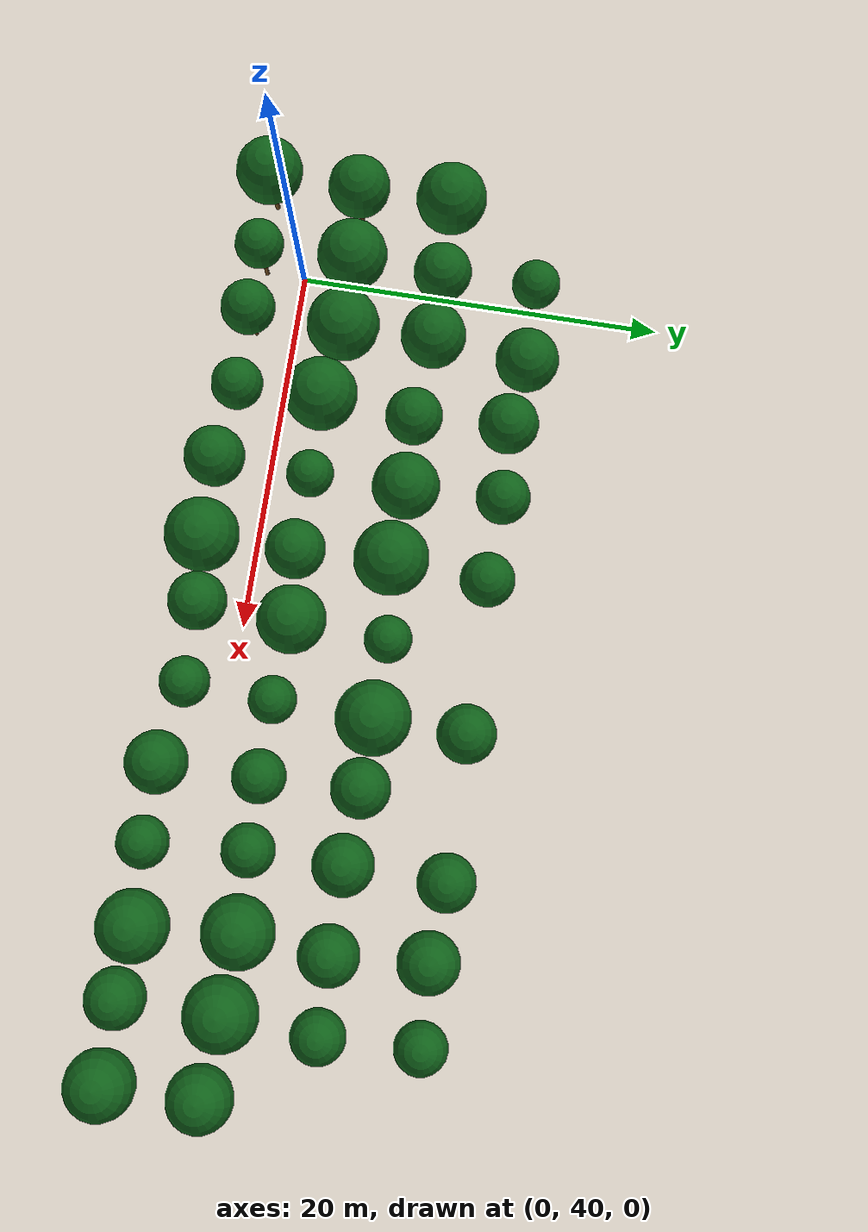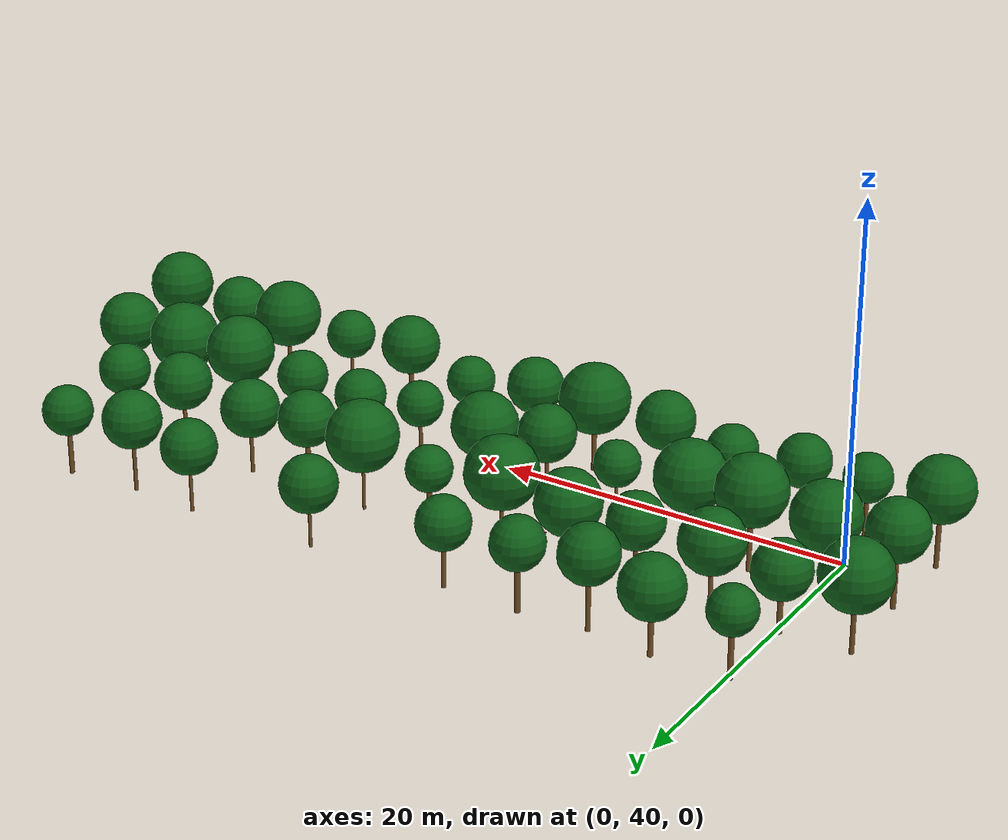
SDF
<sdf version="1.9">
 <world name="cheongsong_orchard">
  <model name="apple_tree_1603">
   <static>true</static>
   <pose>-4.05 37.77 0 0 0 0</pose>
   <link name="link">
    <collision name="trunk_col">
     <pose>0 0 1.34 0 0 0</pose>
     <geometry><cylinder><radius>0.129</radius><length>2.69</length></cylinder></geometry>
    </collision>
    <visual name="trunk_vis">
     <pose>0 0 1.34 0 0 0</pose>
     <geometry><cylinder><radius>0.129</radius><length>2.69</length></cylinder></geometry>
     <material><ambient>0.35 0.22 0.08 1</ambient><diffuse>0.45 0.30 0.12 1</diffuse></material>
    </visual>
    <collision name="canopy_col">
     <pose>0 0 4.48 0 0 0</pose>
     <geometry><sphere><radius>1.79</radius></sphere></geometry>
    </collision>
    <visual name="canopy_vis">
     <pose>0 0 4.48 0 0 0</pose>
     <geometry><sphere><radius>1.79</radius></sphere></geometry>
     <material><ambient>0.04 0.28 0.06 1</ambient><diffuse>0.06 0.38 0.10 1</diffuse></material>
    </visual>
   </link>
  </model>
  <model name="apple_tree_1604">
   <static>true</static>
   <pose>-0.06 37.86 0 0 0 0</pose>
   <link name="link">
    <collision name="trunk_col">
     <pose>0 0 1.37 0 0 0</pose>
     <geometry><cylinder><radius>0.116</radius><length>2.75</length></cylinder></geometry>
    </collision>
    <visual name="trunk_vis">
     <pose>0 0 1.37 0 0 0</pose>
     <geometry><cylinder><radius>0.116</radius><length>2.75</length></cylinder></geometry>
     <material><ambient>0.35 0.22 0.08 1</ambient><diffuse>0.45 0.30 0.12 1</diffuse></material>
    </visual>
    <collision name="canopy_col">
     <pose>0 0 4.07 0 0 0</pose>
     <geometry><sphere><radius>1.32</radius></sphere></geometry>
    </collision>
    <visual name="canopy_vis">
     <pose>0 0 4.07 0 0 0</pose>
     <geometry><sphere><radius>1.32</radius></sphere></geometry>
     <material><ambient>0.04 0.28 0.06 1</ambient><diffuse>0.06 0.38 0.10 1</diffuse></material>
    </visual>
   </link>
  </model>
  <model name="apple_tree_1605">
   <static>true</static>
   <pose>3.52 37.87 0 0 0 0</pose>
   <link name="link">
    <collision name="trunk_col">
     <pose>0 0 1.30 0 0 0</pose>
     <geometry><cylinder><radius>0.112</radius><length>2.61</length></cylinder></geometry>
    </collision>
    <visual name="trunk_vis">
     <pose>0 0 1.30 0 0 0</pose>
     <geometry><cylinder><radius>0.112</radius><length>2.61</length></cylinder></geometry>
     <material><ambient>0.35 0.22 0.08 1</ambient><diffuse>0.45 0.30 0.12 1</diffuse></material>
    </visual>
    <collision name="canopy_col">
     <pose>0 0 4.06 0 0 0</pose>
     <geometry><sphere><radius>1.46</radius></sphere></geometry>
    </collision>
    <visual name="canopy_vis">
     <pose>0 0 4.06 0 0 0</pose>
     <geometry><sphere><radius>1.46</radius></sphere></geometry>
     <material><ambient>0.04 0.28 0.06 1</ambient><diffuse>0.06 0.38 0.10 1</diffuse></material>
    </visual>
   </link>
  </model>
  <model name="apple_tree_1606">
   <static>true</static>
   <pose>7.62 37.94 0 0 0 0</pose>
   <link name="link">
    <collision name="trunk_col">
     <pose>0 0 1.11 0 0 0</pose>
     <geometry><cylinder><radius>0.134</radius><length>2.22</length></cylinder></geometry>
    </collision>
    <visual name="trunk_vis">
     <pose>0 0 1.11 0 0 0</pose>
     <geometry><cylinder><radius>0.134</radius><length>2.22</length></cylinder></geometry>
     <material><ambient>0.35 0.22 0.08 1</ambient><diffuse>0.45 0.30 0.12 1</diffuse></material>
    </visual>
    <collision name="canopy_col">
     <pose>0 0 3.61 0 0 0</pose>
     <geometry><sphere><radius>1.39</radius></sphere></geometry>
    </collision>
    <visual name="canopy_vis">
     <pose>0 0 3.61 0 0 0</pose>
     <geometry><sphere><radius>1.39</radius></sphere></geometry>
     <material><ambient>0.04 0.28 0.06 1</ambient><diffuse>0.06 0.38 0.10 1</diffuse></material>
    </visual>
   </link>
  </model>
  <model name="apple_tree_1607">
   <static>true</static>
   <pose>11.81 37.54 0 0 0 0</pose>
   <link name="link">
    <collision name="trunk_col">
     <pose>0 0 1.23 0 0 0</pose>
     <geometry><cylinder><radius>0.117</radius><length>2.45</length></cylinder></geometry>
    </collision>
    <visual name="trunk_vis">
     <pose>0 0 1.23 0 0 0</pose>
     <geometry><cylinder><radius>0.117</radius><length>2.45</length></cylinder></geometry>
     <material><ambient>0.35 0.22 0.08 1</ambient><diffuse>0.45 0.30 0.12 1</diffuse></material>
    </visual>
    <collision name="canopy_col">
     <pose>0 0 4.06 0 0 0</pose>
     <geometry><sphere><radius>1.61</radius></sphere></geometry>
    </collision>
    <visual name="canopy_vis">
     <pose>0 0 4.06 0 0 0</pose>
     <geometry><sphere><radius>1.61</radius></sphere></geometry>
     <material><ambient>0.04 0.28 0.06 1</ambient><diffuse>0.06 0.38 0.10 1</diffuse></material>
    </visual>
   </link>
  </model>
  <model name="apple_tree_1608">
   <static>true</static>
   <pose>16.07 37.68 0 0 0 0</pose>
   <link name="link">
    <collision name="trunk_col">
     <pose>0 0 1.16 0 0 0</pose>
     <geometry><cylinder><radius>0.133</radius><length>2.32</length></cylinder></geometry>
    </collision>
    <visual name="trunk_vis">
     <pose>0 0 1.16 0 0 0</pose>
     <geometry><cylinder><radius>0.133</radius><length>2.32</length></cylinder></geometry>
     <material><ambient>0.35 0.22 0.08 1</ambient><diffuse>0.45 0.30 0.12 1</diffuse></material>
    </visual>
    <collision name="canopy_col">
     <pose>0 0 4.29 0 0 0</pose>
     <geometry><sphere><radius>1.96</radius></sphere></geometry>
    </collision>
    <visual name="canopy_vis">
     <pose>0 0 4.29 0 0 0</pose>
     <geometry><sphere><radius>1.96</radius></sphere></geometry>
     <material><ambient>0.04 0.28 0.06 1</ambient><diffuse>0.06 0.38 0.10 1</diffuse></material>
    </visual>
   </link>
  </model>
  <model name="apple_tree_1609">
   <static>true</static>
   <pose>19.54 38.08 0 0 0 0</pose>
   <link name="link">
    <collision name="trunk_col">
     <pose>0 0 1.41 0 0 0</pose>
     <geometry><cylinder><radius>0.131</radius><length>2.81</length></cylinder></geometry>
    </collision>
    <visual name="trunk_vis">
     <pose>0 0 1.41 0 0 0</pose>
     <geometry><cylinder><radius>0.131</radius><length>2.81</length></cylinder></geometry>
     <material><ambient>0.35 0.22 0.08 1</ambient><diffuse>0.45 0.30 0.12 1</diffuse></material>
    </visual>
    <collision name="canopy_col">
     <pose>0 0 4.35 0 0 0</pose>
     <geometry><sphere><radius>1.54</radius></sphere></geometry>
    </collision>
    <visual name="canopy_vis">
     <pose>0 0 4.35 0 0 0</pose>
     <geometry><sphere><radius>1.54</radius></sphere></geometry>
     <material><ambient>0.04 0.28 0.06 1</ambient><diffuse>0.06 0.38 0.10 1</diffuse></material>
    </visual>
   </link>
  </model>
  <model name="apple_tree_1610">
   <static>true</static>
   <pose>23.68 38.04 0 0 0 0</pose>
   <link name="link">
    <collision name="trunk_col">
     <pose>0 0 1.13 0 0 0</pose>
     <geometry><cylinder><radius>0.104</radius><length>2.26</length></cylinder></geometry>
    </collision>
    <visual name="trunk_vis">
     <pose>0 0 1.13 0 0 0</pose>
     <geometry><cylinder><radius>0.104</radius><length>2.26</length></cylinder></geometry>
     <material><ambient>0.35 0.22 0.08 1</ambient><diffuse>0.45 0.30 0.12 1</diffuse></material>
    </visual>
    <collision name="canopy_col">
     <pose>0 0 3.59 0 0 0</pose>
     <geometry><sphere><radius>1.33</radius></sphere></geometry>
    </collision>
    <visual name="canopy_vis">
     <pose>0 0 3.59 0 0 0</pose>
     <geometry><sphere><radius>1.33</radius></sphere></geometry>
     <material><ambient>0.04 0.28 0.06 1</ambient><diffuse>0.06 0.38 0.10 1</diffuse></material>
    </visual>
   </link>
  </model>
  <model name="apple_tree_1611">
   <static>true</static>
   <pose>27.96 37.53 0 0 0 0</pose>
   <link name="link">
    <collision name="trunk_col">
     <pose>0 0 1.41 0 0 0</pose>
     <geometry><cylinder><radius>0.147</radius><length>2.83</length></cylinder></geometry>
    </collision>
    <visual name="trunk_vis">
     <pose>0 0 1.41 0 0 0</pose>
     <geometry><cylinder><radius>0.147</radius><length>2.83</length></cylinder></geometry>
     <material><ambient>0.35 0.22 0.08 1</ambient><diffuse>0.45 0.30 0.12 1</diffuse></material>
    </visual>
    <collision name="canopy_col">
     <pose>0 0 4.46 0 0 0</pose>
     <geometry><sphere><radius>1.63</radius></sphere></geometry>
    </collision>
    <visual name="canopy_vis">
     <pose>0 0 4.46 0 0 0</pose>
     <geometry><sphere><radius>1.63</radius></sphere></geometry>
     <material><ambient>0.04 0.28 0.06 1</ambient><diffuse>0.06 0.38 0.10 1</diffuse></material>
    </visual>
   </link>
  </model>
  <model name="apple_tree_1612">
   <static>true</static>
   <pose>31.99 37.51 0 0 0 0</pose>
   <link name="link">
    <collision name="trunk_col">
     <pose>0 0 1.38 0 0 0</pose>
     <geometry><cylinder><radius>0.082</radius><length>2.76</length></cylinder></geometry>
    </collision>
    <visual name="trunk_vis">
     <pose>0 0 1.38 0 0 0</pose>
     <geometry><cylinder><radius>0.082</radius><length>2.76</length></cylinder></geometry>
     <material><ambient>0.35 0.22 0.08 1</ambient><diffuse>0.45 0.30 0.12 1</diffuse></material>
    </visual>
    <collision name="canopy_col">
     <pose>0 0 4.12 0 0 0</pose>
     <geometry><sphere><radius>1.36</radius></sphere></geometry>
    </collision>
    <visual name="canopy_vis">
     <pose>0 0 4.12 0 0 0</pose>
     <geometry><sphere><radius>1.36</radius></sphere></geometry>
     <material><ambient>0.04 0.28 0.06 1</ambient><diffuse>0.06 0.38 0.10 1</diffuse></material>
    </visual>
   </link>
  </model>
  <model name="apple_tree_1613">
   <static>true</static>
   <pose>36.08 37.85 0 0 0 0</pose>
   <link name="link">
    <collision name="trunk_col">
     <pose>0 0 1.33 0 0 0</pose>
     <geometry><cylinder><radius>0.116</radius><length>2.66</length></cylinder></geometry>
    </collision>
    <visual name="trunk_vis">
     <pose>0 0 1.33 0 0 0</pose>
     <geometry><cylinder><radius>0.116</radius><length>2.66</length></cylinder></geometry>
     <material><ambient>0.35 0.22 0.08 1</ambient><diffuse>0.45 0.30 0.12 1</diffuse></material>
    </visual>
    <collision name="canopy_col">
     <pose>0 0 4.53 0 0 0</pose>
     <geometry><sphere><radius>1.86</radius></sphere></geometry>
    </collision>
    <visual name="canopy_vis">
     <pose>0 0 4.53 0 0 0</pose>
     <geometry><sphere><radius>1.86</radius></sphere></geometry>
     <material><ambient>0.04 0.28 0.06 1</ambient><diffuse>0.06 0.38 0.10 1</diffuse></material>
    </visual>
   </link>
  </model>
  <model name="apple_tree_1614">
   <static>true</static>
   <pose>39.69 37.58 0 0 0 0</pose>
   <link name="link">
    <collision name="trunk_col">
     <pose>0 0 1.32 0 0 0</pose>
     <geometry><cylinder><radius>0.139</radius><length>2.64</length></cylinder></geometry>
    </collision>
    <visual name="trunk_vis">
     <pose>0 0 1.32 0 0 0</pose>
     <geometry><cylinder><radius>0.139</radius><length>2.64</length></cylinder></geometry>
     <material><ambient>0.35 0.22 0.08 1</ambient><diffuse>0.45 0.30 0.12 1</diffuse></material>
    </visual>
    <collision name="canopy_col">
     <pose>0 0 4.19 0 0 0</pose>
     <geometry><sphere><radius>1.56</radius></sphere></geometry>
    </collision>
    <visual name="canopy_vis">
     <pose>0 0 4.19 0 0 0</pose>
     <geometry><sphere><radius>1.56</radius></sphere></geometry>
     <material><ambient>0.04 0.28 0.06 1</ambient><diffuse>0.06 0.38 0.10 1</diffuse></material>
    </visual>
   </link>
  </model>
  <model name="apple_tree_1615">
   <static>true</static>
   <pose>43.77 37.67 0 0 0 0</pose>
   <link name="link">
    <collision name="trunk_col">
     <pose>0 0 1.40 0 0 0</pose>
     <geometry><cylinder><radius>0.150</radius><length>2.79</length></cylinder></geometry>
    </collision>
    <visual name="trunk_vis">
     <pose>0 0 1.40 0 0 0</pose>
     <geometry><cylinder><radius>0.150</radius><length>2.79</length></cylinder></geometry>
     <material><ambient>0.35 0.22 0.08 1</ambient><diffuse>0.45 0.30 0.12 1</diffuse></material>
    </visual>
    <collision name="canopy_col">
     <pose>0 0 4.58 0 0 0</pose>
     <geometry><sphere><radius>1.79</radius></sphere></geometry>
    </collision>
    <visual name="canopy_vis">
     <pose>0 0 4.58 0 0 0</pose>
     <geometry><sphere><radius>1.79</radius></sphere></geometry>
     <material><ambient>0.04 0.28 0.06 1</ambient><diffuse>0.06 0.38 0.10 1</diffuse></material>
    </visual>
   </link>
  </model>
  <model name="apple_tree_1660">
   <static>true</static>
   <pose>-3.93 42.68 0 0 0 0</pose>
   <link name="link">
    <collision name="trunk_col">
     <pose>0 0 1.38 0 0 0</pose>
     <geometry><cylinder><radius>0.141</radius><length>2.75</length></cylinder></geometry>
    </collision>
    <visual name="trunk_vis">
     <pose>0 0 1.38 0 0 0</pose>
     <geometry><cylinder><radius>0.141</radius><length>2.75</length></cylinder></geometry>
     <material><ambient>0.35 0.22 0.08 1</ambient><diffuse>0.45 0.30 0.12 1</diffuse></material>
    </visual>
    <collision name="canopy_col">
     <pose>0 0 4.42 0 0 0</pose>
     <geometry><sphere><radius>1.67</radius></sphere></geometry>
    </collision>
    <visual name="canopy_vis">
     <pose>0 0 4.42 0 0 0</pose>
     <geometry><sphere><radius>1.67</radius></sphere></geometry>
     <material><ambient>0.04 0.28 0.06 1</ambient><diffuse>0.06 0.38 0.10 1</diffuse></material>
    </visual>
   </link>
  </model>
  <model name="apple_tree_1661">
   <static>true</static>
   <pose>-0.18 42.90 0 0 0 0</pose>
   <link name="link">
    <collision name="trunk_col">
     <pose>0 0 1.16 0 0 0</pose>
     <geometry><cylinder><radius>0.120</radius><length>2.32</length></cylinder></geometry>
    </collision>
    <visual name="trunk_vis">
     <pose>0 0 1.16 0 0 0</pose>
     <geometry><cylinder><radius>0.120</radius><length>2.32</length></cylinder></geometry>
     <material><ambient>0.35 0.22 0.08 1</ambient><diffuse>0.45 0.30 0.12 1</diffuse></material>
    </visual>
    <collision name="canopy_col">
     <pose>0 0 4.21 0 0 0</pose>
     <geometry><sphere><radius>1.88</radius></sphere></geometry>
    </collision>
    <visual name="canopy_vis">
     <pose>0 0 4.21 0 0 0</pose>
     <geometry><sphere><radius>1.88</radius></sphere></geometry>
     <material><ambient>0.04 0.28 0.06 1</ambient><diffuse>0.06 0.38 0.10 1</diffuse></material>
    </visual>
   </link>
  </model>
  <model name="apple_tree_1662">
   <static>true</static>
   <pose>3.87 43.09 0 0 0 0</pose>
   <link name="link">
    <collision name="trunk_col">
     <pose>0 0 1.33 0 0 0</pose>
     <geometry><cylinder><radius>0.123</radius><length>2.67</length></cylinder></geometry>
    </collision>
    <visual name="trunk_vis">
     <pose>0 0 1.33 0 0 0</pose>
     <geometry><cylinder><radius>0.123</radius><length>2.67</length></cylinder></geometry>
     <material><ambient>0.35 0.22 0.08 1</ambient><diffuse>0.45 0.30 0.12 1</diffuse></material>
    </visual>
    <collision name="canopy_col">
     <pose>0 0 4.60 0 0 0</pose>
     <geometry><sphere><radius>1.93</radius></sphere></geometry>
    </collision>
    <visual name="canopy_vis">
     <pose>0 0 4.60 0 0 0</pose>
     <geometry><sphere><radius>1.93</radius></sphere></geometry>
     <material><ambient>0.04 0.28 0.06 1</ambient><diffuse>0.06 0.38 0.10 1</diffuse></material>
    </visual>
   </link>
  </model>
  <model name="apple_tree_1663">
   <static>true</static>
   <pose>7.64 42.51 0 0 0 0</pose>
   <link name="link">
    <collision name="trunk_col">
     <pose>0 0 1.09 0 0 0</pose>
     <geometry><cylinder><radius>0.095</radius><length>2.18</length></cylinder></geometry>
    </collision>
    <visual name="trunk_vis">
     <pose>0 0 1.09 0 0 0</pose>
     <geometry><cylinder><radius>0.095</radius><length>2.18</length></cylinder></geometry>
     <material><ambient>0.35 0.22 0.08 1</ambient><diffuse>0.45 0.30 0.12 1</diffuse></material>
    </visual>
    <collision name="canopy_col">
     <pose>0 0 4.12 0 0 0</pose>
     <geometry><sphere><radius>1.94</radius></sphere></geometry>
    </collision>
    <visual name="canopy_vis">
     <pose>0 0 4.12 0 0 0</pose>
     <geometry><sphere><radius>1.94</radius></sphere></geometry>
     <material><ambient>0.04 0.28 0.06 1</ambient><diffuse>0.06 0.38 0.10 1</diffuse></material>
    </visual>
   </link>
  </model>
  <model name="apple_tree_1664">
   <static>true</static>
   <pose>11.88 42.60 0 0 0 0</pose>
   <link name="link">
    <collision name="trunk_col">
     <pose>0 0 1.21 0 0 0</pose>
     <geometry><cylinder><radius>0.080</radius><length>2.41</length></cylinder></geometry>
    </collision>
    <visual name="trunk_vis">
     <pose>0 0 1.21 0 0 0</pose>
     <geometry><cylinder><radius>0.080</radius><length>2.41</length></cylinder></geometry>
     <material><ambient>0.35 0.22 0.08 1</ambient><diffuse>0.45 0.30 0.12 1</diffuse></material>
    </visual>
    <collision name="canopy_col">
     <pose>0 0 3.68 0 0 0</pose>
     <geometry><sphere><radius>1.26</radius></sphere></geometry>
    </collision>
    <visual name="canopy_vis">
     <pose>0 0 3.68 0 0 0</pose>
     <geometry><sphere><radius>1.26</radius></sphere></geometry>
     <material><ambient>0.04 0.28 0.06 1</ambient><diffuse>0.06 0.38 0.10 1</diffuse></material>
    </visual>
   </link>
  </model>
  <model name="apple_tree_1665">
   <static>true</static>
   <pose>16.09 42.59 0 0 0 0</pose>
   <link name="link">
    <collision name="trunk_col">
     <pose>0 0 1.37 0 0 0</pose>
     <geometry><cylinder><radius>0.110</radius><length>2.74</length></cylinder></geometry>
    </collision>
    <visual name="trunk_vis">
     <pose>0 0 1.37 0 0 0</pose>
     <geometry><cylinder><radius>0.110</radius><length>2.74</length></cylinder></geometry>
     <material><ambient>0.35 0.22 0.08 1</ambient><diffuse>0.45 0.30 0.12 1</diffuse></material>
    </visual>
    <collision name="canopy_col">
     <pose>0 0 4.31 0 0 0</pose>
     <geometry><sphere><radius>1.58</radius></sphere></geometry>
    </collision>
    <visual name="canopy_vis">
     <pose>0 0 4.31 0 0 0</pose>
     <geometry><sphere><radius>1.58</radius></sphere></geometry>
     <material><ambient>0.04 0.28 0.06 1</ambient><diffuse>0.06 0.38 0.10 1</diffuse></material>
    </visual>
   </link>
  </model>
  <model name="apple_tree_1666">
   <static>true</static>
   <pose>19.69 42.97 0 0 0 0</pose>
   <link name="link">
    <collision name="trunk_col">
     <pose>0 0 1.09 0 0 0</pose>
     <geometry><cylinder><radius>0.108</radius><length>2.18</length></cylinder></geometry>
    </collision>
    <visual name="trunk_vis">
     <pose>0 0 1.09 0 0 0</pose>
     <geometry><cylinder><radius>0.108</radius><length>2.18</length></cylinder></geometry>
     <material><ambient>0.35 0.22 0.08 1</ambient><diffuse>0.45 0.30 0.12 1</diffuse></material>
    </visual>
    <collision name="canopy_col">
     <pose>0 0 4.00 0 0 0</pose>
     <geometry><sphere><radius>1.82</radius></sphere></geometry>
    </collision>
    <visual name="canopy_vis">
     <pose>0 0 4.00 0 0 0</pose>
     <geometry><sphere><radius>1.82</radius></sphere></geometry>
     <material><ambient>0.04 0.28 0.06 1</ambient><diffuse>0.06 0.38 0.10 1</diffuse></material>
    </visual>
   </link>
  </model>
  <model name="apple_tree_1667">
   <static>true</static>
   <pose>23.93 42.72 0 0 0 0</pose>
   <link name="link">
    <collision name="trunk_col">
     <pose>0 0 1.38 0 0 0</pose>
     <geometry><cylinder><radius>0.102</radius><length>2.77</length></cylinder></geometry>
    </collision>
    <visual name="trunk_vis">
     <pose>0 0 1.38 0 0 0</pose>
     <geometry><cylinder><radius>0.102</radius><length>2.77</length></cylinder></geometry>
     <material><ambient>0.35 0.22 0.08 1</ambient><diffuse>0.45 0.30 0.12 1</diffuse></material>
    </visual>
    <collision name="canopy_col">
     <pose>0 0 4.03 0 0 0</pose>
     <geometry><sphere><radius>1.26</radius></sphere></geometry>
    </collision>
    <visual name="canopy_vis">
     <pose>0 0 4.03 0 0 0</pose>
     <geometry><sphere><radius>1.26</radius></sphere></geometry>
     <material><ambient>0.04 0.28 0.06 1</ambient><diffuse>0.06 0.38 0.10 1</diffuse></material>
    </visual>
   </link>
  </model>
  <model name="apple_tree_1668">
   <static>true</static>
   <pose>27.87 42.64 0 0 0 0</pose>
   <link name="link">
    <collision name="trunk_col">
     <pose>0 0 1.06 0 0 0</pose>
     <geometry><cylinder><radius>0.124</radius><length>2.11</length></cylinder></geometry>
    </collision>
    <visual name="trunk_vis">
     <pose>0 0 1.06 0 0 0</pose>
     <geometry><cylinder><radius>0.124</radius><length>2.11</length></cylinder></geometry>
     <material><ambient>0.35 0.22 0.08 1</ambient><diffuse>0.45 0.30 0.12 1</diffuse></material>
    </visual>
    <collision name="canopy_col">
     <pose>0 0 3.53 0 0 0</pose>
     <geometry><sphere><radius>1.42</radius></sphere></geometry>
    </collision>
    <visual name="canopy_vis">
     <pose>0 0 3.53 0 0 0</pose>
     <geometry><sphere><radius>1.42</radius></sphere></geometry>
     <material><ambient>0.04 0.28 0.06 1</ambient><diffuse>0.06 0.38 0.10 1</diffuse></material>
    </visual>
   </link>
  </model>
  <model name="apple_tree_1669">
   <static>true</static>
   <pose>31.60 42.77 0 0 0 0</pose>
   <link name="link">
    <collision name="trunk_col">
     <pose>0 0 1.19 0 0 0</pose>
     <geometry><cylinder><radius>0.129</radius><length>2.38</length></cylinder></geometry>
    </collision>
    <visual name="trunk_vis">
     <pose>0 0 1.19 0 0 0</pose>
     <geometry><cylinder><radius>0.129</radius><length>2.38</length></cylinder></geometry>
     <material><ambient>0.35 0.22 0.08 1</ambient><diffuse>0.45 0.30 0.12 1</diffuse></material>
    </visual>
    <collision name="canopy_col">
     <pose>0 0 3.78 0 0 0</pose>
     <geometry><sphere><radius>1.40</radius></sphere></geometry>
    </collision>
    <visual name="canopy_vis">
     <pose>0 0 3.78 0 0 0</pose>
     <geometry><sphere><radius>1.40</radius></sphere></geometry>
     <material><ambient>0.04 0.28 0.06 1</ambient><diffuse>0.06 0.38 0.10 1</diffuse></material>
    </visual>
   </link>
  </model>
  <model name="apple_tree_1670">
   <static>true</static>
   <pose>35.58 43.05 0 0 0 0</pose>
   <link name="link">
    <collision name="trunk_col">
     <pose>0 0 1.29 0 0 0</pose>
     <geometry><cylinder><radius>0.092</radius><length>2.59</length></cylinder></geometry>
    </collision>
    <visual name="trunk_vis">
     <pose>0 0 1.29 0 0 0</pose>
     <geometry><cylinder><radius>0.092</radius><length>2.59</length></cylinder></geometry>
     <material><ambient>0.35 0.22 0.08 1</ambient><diffuse>0.45 0.30 0.12 1</diffuse></material>
    </visual>
    <collision name="canopy_col">
     <pose>0 0 4.48 0 0 0</pose>
     <geometry><sphere><radius>1.89</radius></sphere></geometry>
    </collision>
    <visual name="canopy_vis">
     <pose>0 0 4.48 0 0 0</pose>
     <geometry><sphere><radius>1.89</radius></sphere></geometry>
     <material><ambient>0.04 0.28 0.06 1</ambient><diffuse>0.06 0.38 0.10 1</diffuse></material>
    </visual>
   </link>
  </model>
  <model name="apple_tree_1671">
   <static>true</static>
   <pose>39.63 42.86 0 0 0 0</pose>
   <link name="link">
    <collision name="trunk_col">
     <pose>0 0 1.14 0 0 0</pose>
     <geometry><cylinder><radius>0.144</radius><length>2.27</length></cylinder></geometry>
    </collision>
    <visual name="trunk_vis">
     <pose>0 0 1.14 0 0 0</pose>
     <geometry><cylinder><radius>0.144</radius><length>2.27</length></cylinder></geometry>
     <material><ambient>0.35 0.22 0.08 1</ambient><diffuse>0.45 0.30 0.12 1</diffuse></material>
    </visual>
    <collision name="canopy_col">
     <pose>0 0 4.20 0 0 0</pose>
     <geometry><sphere><radius>1.93</radius></sphere></geometry>
    </collision>
    <visual name="canopy_vis">
     <pose>0 0 4.20 0 0 0</pose>
     <geometry><sphere><radius>1.93</radius></sphere></geometry>
     <material><ambient>0.04 0.28 0.06 1</ambient><diffuse>0.06 0.38 0.10 1</diffuse></material>
    </visual>
   </link>
  </model>
  <model name="apple_tree_1672">
   <static>true</static>
   <pose>43.81 42.52 0 0 0 0</pose>
   <link name="link">
    <collision name="trunk_col">
     <pose>0 0 1.11 0 0 0</pose>
     <geometry><cylinder><radius>0.125</radius><length>2.22</length></cylinder></geometry>
    </collision>
    <visual name="trunk_vis">
     <pose>0 0 1.11 0 0 0</pose>
     <geometry><cylinder><radius>0.125</radius><length>2.22</length></cylinder></geometry>
     <material><ambient>0.35 0.22 0.08 1</ambient><diffuse>0.45 0.30 0.12 1</diffuse></material>
    </visual>
    <collision name="canopy_col">
     <pose>0 0 3.93 0 0 0</pose>
     <geometry><sphere><radius>1.71</radius></sphere></geometry>
    </collision>
    <visual name="canopy_vis">
     <pose>0 0 3.93 0 0 0</pose>
     <geometry><sphere><radius>1.71</radius></sphere></geometry>
     <material><ambient>0.04 0.28 0.06 1</ambient><diffuse>0.06 0.38 0.10 1</diffuse></material>
    </visual>
   </link>
  </model>
  <model name="apple_tree_1716">
   <static>true</static>
   <pose>-4.06 47.67 0 0 0 0</pose>
   <link name="link">
    <collision name="trunk_col">
     <pose>0 0 1.23 0 0 0</pose>
     <geometry><cylinder><radius>0.123</radius><length>2.45</length></cylinder></geometry>
    </collision>
    <visual name="trunk_vis">
     <pose>0 0 1.23 0 0 0</pose>
     <geometry><cylinder><radius>0.123</radius><length>2.45</length></cylinder></geometry>
     <material><ambient>0.35 0.22 0.08 1</ambient><diffuse>0.45 0.30 0.12 1</diffuse></material>
    </visual>
    <collision name="canopy_col">
     <pose>0 0 4.35 0 0 0</pose>
     <geometry><sphere><radius>1.90</radius></sphere></geometry>
    </collision>
    <visual name="canopy_vis">
     <pose>0 0 4.35 0 0 0</pose>
     <geometry><sphere><radius>1.90</radius></sphere></geometry>
     <material><ambient>0.04 0.28 0.06 1</ambient><diffuse>0.06 0.38 0.10 1</diffuse></material>
    </visual>
   </link>
  </model>
  <model name="apple_tree_1717">
   <static>true</static>
   <pose>-0.23 47.79 0 0 0 0</pose>
   <link name="link">
    <collision name="trunk_col">
     <pose>0 0 0.99 0 0 0</pose>
     <geometry><cylinder><radius>0.141</radius><length>1.99</length></cylinder></geometry>
    </collision>
    <visual name="trunk_vis">
     <pose>0 0 0.99 0 0 0</pose>
     <geometry><cylinder><radius>0.141</radius><length>1.99</length></cylinder></geometry>
     <material><ambient>0.35 0.22 0.08 1</ambient><diffuse>0.45 0.30 0.12 1</diffuse></material>
    </visual>
    <collision name="canopy_col">
     <pose>0 0 3.56 0 0 0</pose>
     <geometry><sphere><radius>1.57</radius></sphere></geometry>
    </collision>
    <visual name="canopy_vis">
     <pose>0 0 3.56 0 0 0</pose>
     <geometry><sphere><radius>1.57</radius></sphere></geometry>
     <material><ambient>0.04 0.28 0.06 1</ambient><diffuse>0.06 0.38 0.10 1</diffuse></material>
    </visual>
   </link>
  </model>
  <model name="apple_tree_1718">
   <static>true</static>
   <pose>3.54 47.87 0 0 0 0</pose>
   <link name="link">
    <collision name="trunk_col">
     <pose>0 0 1.16 0 0 0</pose>
     <geometry><cylinder><radius>0.110</radius><length>2.31</length></cylinder></geometry>
    </collision>
    <visual name="trunk_vis">
     <pose>0 0 1.16 0 0 0</pose>
     <geometry><cylinder><radius>0.110</radius><length>2.31</length></cylinder></geometry>
     <material><ambient>0.35 0.22 0.08 1</ambient><diffuse>0.45 0.30 0.12 1</diffuse></material>
    </visual>
    <collision name="canopy_col">
     <pose>0 0 4.05 0 0 0</pose>
     <geometry><sphere><radius>1.74</radius></sphere></geometry>
    </collision>
    <visual name="canopy_vis">
     <pose>0 0 4.05 0 0 0</pose>
     <geometry><sphere><radius>1.74</radius></sphere></geometry>
     <material><ambient>0.04 0.28 0.06 1</ambient><diffuse>0.06 0.38 0.10 1</diffuse></material>
    </visual>
   </link>
  </model>
  <model name="apple_tree_1719">
   <static>true</static>
   <pose>7.97 47.52 0 0 0 0</pose>
   <link name="link">
    <collision name="trunk_col">
     <pose>0 0 1.11 0 0 0</pose>
     <geometry><cylinder><radius>0.101</radius><length>2.21</length></cylinder></geometry>
    </collision>
    <visual name="trunk_vis">
     <pose>0 0 1.11 0 0 0</pose>
     <geometry><cylinder><radius>0.101</radius><length>2.21</length></cylinder></geometry>
     <material><ambient>0.35 0.22 0.08 1</ambient><diffuse>0.45 0.30 0.12 1</diffuse></material>
    </visual>
    <collision name="canopy_col">
     <pose>0 0 3.74 0 0 0</pose>
     <geometry><sphere><radius>1.53</radius></sphere></geometry>
    </collision>
    <visual name="canopy_vis">
     <pose>0 0 3.74 0 0 0</pose>
     <geometry><sphere><radius>1.53</radius></sphere></geometry>
     <material><ambient>0.04 0.28 0.06 1</ambient><diffuse>0.06 0.38 0.10 1</diffuse></material>
    </visual>
   </link>
  </model>
  <model name="apple_tree_1720">
   <static>true</static>
   <pose>11.78 47.69 0 0 0 0</pose>
   <link name="link">
    <collision name="trunk_col">
     <pose>0 0 0.99 0 0 0</pose>
     <geometry><cylinder><radius>0.088</radius><length>1.98</length></cylinder></geometry>
    </collision>
    <visual name="trunk_vis">
     <pose>0 0 0.99 0 0 0</pose>
     <geometry><cylinder><radius>0.088</radius><length>1.98</length></cylinder></geometry>
     <material><ambient>0.35 0.22 0.08 1</ambient><diffuse>0.45 0.30 0.12 1</diffuse></material>
    </visual>
    <collision name="canopy_col">
     <pose>0 0 3.77 0 0 0</pose>
     <geometry><sphere><radius>1.79</radius></sphere></geometry>
    </collision>
    <visual name="canopy_vis">
     <pose>0 0 3.77 0 0 0</pose>
     <geometry><sphere><radius>1.79</radius></sphere></geometry>
     <material><ambient>0.04 0.28 0.06 1</ambient><diffuse>0.06 0.38 0.10 1</diffuse></material>
    </visual>
   </link>
  </model>
  <model name="apple_tree_1721">
   <static>true</static>
   <pose>15.79 47.56 0 0 0 0</pose>
   <link name="link">
    <collision name="trunk_col">
     <pose>0 0 1.16 0 0 0</pose>
     <geometry><cylinder><radius>0.090</radius><length>2.31</length></cylinder></geometry>
    </collision>
    <visual name="trunk_vis">
     <pose>0 0 1.16 0 0 0</pose>
     <geometry><cylinder><radius>0.090</radius><length>2.31</length></cylinder></geometry>
     <material><ambient>0.35 0.22 0.08 1</ambient><diffuse>0.45 0.30 0.12 1</diffuse></material>
    </visual>
    <collision name="canopy_col">
     <pose>0 0 4.29 0 0 0</pose>
     <geometry><sphere><radius>1.98</radius></sphere></geometry>
    </collision>
    <visual name="canopy_vis">
     <pose>0 0 4.29 0 0 0</pose>
     <geometry><sphere><radius>1.98</radius></sphere></geometry>
     <material><ambient>0.04 0.28 0.06 1</ambient><diffuse>0.06 0.38 0.10 1</diffuse></material>
    </visual>
   </link>
  </model>
  <model name="apple_tree_1722">
   <static>true</static>
   <pose>19.89 48.04 0 0 0 0</pose>
   <link name="link">
    <collision name="trunk_col">
     <pose>0 0 1.16 0 0 0</pose>
     <geometry><cylinder><radius>0.149</radius><length>2.32</length></cylinder></geometry>
    </collision>
    <visual name="trunk_vis">
     <pose>0 0 1.16 0 0 0</pose>
     <geometry><cylinder><radius>0.149</radius><length>2.32</length></cylinder></geometry>
     <material><ambient>0.35 0.22 0.08 1</ambient><diffuse>0.45 0.30 0.12 1</diffuse></material>
    </visual>
    <collision name="canopy_col">
     <pose>0 0 3.59 0 0 0</pose>
     <geometry><sphere><radius>1.26</radius></sphere></geometry>
    </collision>
    <visual name="canopy_vis">
     <pose>0 0 3.59 0 0 0</pose>
     <geometry><sphere><radius>1.26</radius></sphere></geometry>
     <material><ambient>0.04 0.28 0.06 1</ambient><diffuse>0.06 0.38 0.10 1</diffuse></material>
    </visual>
   </link>
  </model>
  <model name="apple_tree_1723">
   <static>true</static>
   <pose>24.07 47.96 0 0 0 0</pose>
   <link name="link">
    <collision name="trunk_col">
     <pose>0 0 1.18 0 0 0</pose>
     <geometry><cylinder><radius>0.082</radius><length>2.36</length></cylinder></geometry>
    </collision>
    <visual name="trunk_vis">
     <pose>0 0 1.18 0 0 0</pose>
     <geometry><cylinder><radius>0.082</radius><length>2.36</length></cylinder></geometry>
     <material><ambient>0.35 0.22 0.08 1</ambient><diffuse>0.45 0.30 0.12 1</diffuse></material>
    </visual>
    <collision name="canopy_col">
     <pose>0 0 4.32 0 0 0</pose>
     <geometry><sphere><radius>1.96</radius></sphere></geometry>
    </collision>
    <visual name="canopy_vis">
     <pose>0 0 4.32 0 0 0</pose>
     <geometry><sphere><radius>1.96</radius></sphere></geometry>
     <material><ambient>0.04 0.28 0.06 1</ambient><diffuse>0.06 0.38 0.10 1</diffuse></material>
    </visual>
   </link>
  </model>
  <model name="apple_tree_1724">
   <static>true</static>
   <pose>27.66 47.90 0 0 0 0</pose>
   <link name="link">
    <collision name="trunk_col">
     <pose>0 0 1.41 0 0 0</pose>
     <geometry><cylinder><radius>0.139</radius><length>2.81</length></cylinder></geometry>
    </collision>
    <visual name="trunk_vis">
     <pose>0 0 1.41 0 0 0</pose>
     <geometry><cylinder><radius>0.139</radius><length>2.81</length></cylinder></geometry>
     <material><ambient>0.35 0.22 0.08 1</ambient><diffuse>0.45 0.30 0.12 1</diffuse></material>
    </visual>
    <collision name="canopy_col">
     <pose>0 0 4.36 0 0 0</pose>
     <geometry><sphere><radius>1.55</radius></sphere></geometry>
    </collision>
    <visual name="canopy_vis">
     <pose>0 0 4.36 0 0 0</pose>
     <geometry><sphere><radius>1.55</radius></sphere></geometry>
     <material><ambient>0.04 0.28 0.06 1</ambient><diffuse>0.06 0.38 0.10 1</diffuse></material>
    </visual>
   </link>
  </model>
  <model name="apple_tree_1725">
   <static>true</static>
   <pose>31.58 47.63 0 0 0 0</pose>
   <link name="link">
    <collision name="trunk_col">
     <pose>0 0 1.10 0 0 0</pose>
     <geometry><cylinder><radius>0.101</radius><length>2.20</length></cylinder></geometry>
    </collision>
    <visual name="trunk_vis">
     <pose>0 0 1.10 0 0 0</pose>
     <geometry><cylinder><radius>0.101</radius><length>2.20</length></cylinder></geometry>
     <material><ambient>0.35 0.22 0.08 1</ambient><diffuse>0.45 0.30 0.12 1</diffuse></material>
    </visual>
    <collision name="canopy_col">
     <pose>0 0 3.82 0 0 0</pose>
     <geometry><sphere><radius>1.61</radius></sphere></geometry>
    </collision>
    <visual name="canopy_vis">
     <pose>0 0 3.82 0 0 0</pose>
     <geometry><sphere><radius>1.61</radius></sphere></geometry>
     <material><ambient>0.04 0.28 0.06 1</ambient><diffuse>0.06 0.38 0.10 1</diffuse></material>
    </visual>
   </link>
  </model>
  <model name="apple_tree_1726">
   <static>true</static>
   <pose>36.02 47.66 0 0 0 0</pose>
   <link name="link">
    <collision name="trunk_col">
     <pose>0 0 1.36 0 0 0</pose>
     <geometry><cylinder><radius>0.106</radius><length>2.73</length></cylinder></geometry>
    </collision>
    <visual name="trunk_vis">
     <pose>0 0 1.36 0 0 0</pose>
     <geometry><cylinder><radius>0.106</radius><length>2.73</length></cylinder></geometry>
     <material><ambient>0.35 0.22 0.08 1</ambient><diffuse>0.45 0.30 0.12 1</diffuse></material>
    </visual>
    <collision name="canopy_col">
     <pose>0 0 4.31 0 0 0</pose>
     <geometry><sphere><radius>1.58</radius></sphere></geometry>
    </collision>
    <visual name="canopy_vis">
     <pose>0 0 4.31 0 0 0</pose>
     <geometry><sphere><radius>1.58</radius></sphere></geometry>
     <material><ambient>0.04 0.28 0.06 1</ambient><diffuse>0.06 0.38 0.10 1</diffuse></material>
    </visual>
   </link>
  </model>
  <model name="apple_tree_1727">
   <static>true</static>
   <pose>39.97 47.77 0 0 0 0</pose>
   <link name="link">
    <collision name="trunk_col">
     <pose>0 0 1.34 0 0 0</pose>
     <geometry><cylinder><radius>0.134</radius><length>2.68</length></cylinder></geometry>
    </collision>
    <visual name="trunk_vis">
     <pose>0 0 1.34 0 0 0</pose>
     <geometry><cylinder><radius>0.134</radius><length>2.68</length></cylinder></geometry>
     <material><ambient>0.35 0.22 0.08 1</ambient><diffuse>0.45 0.30 0.12 1</diffuse></material>
    </visual>
    <collision name="canopy_col">
     <pose>0 0 4.10 0 0 0</pose>
     <geometry><sphere><radius>1.42</radius></sphere></geometry>
    </collision>
    <visual name="canopy_vis">
     <pose>0 0 4.10 0 0 0</pose>
     <geometry><sphere><radius>1.42</radius></sphere></geometry>
     <material><ambient>0.04 0.28 0.06 1</ambient><diffuse>0.06 0.38 0.10 1</diffuse></material>
    </visual>
   </link>
  </model>
  <model name="apple_tree_1773">
   <static>true</static>
   <pose>-0.20 52.85 0 0 0 0</pose>
   <link name="link">
    <collision name="trunk_col">
     <pose>0 0 1.26 0 0 0</pose>
     <geometry><cylinder><radius>0.140</radius><length>2.52</length></cylinder></geometry>
    </collision>
    <visual name="trunk_vis">
     <pose>0 0 1.26 0 0 0</pose>
     <geometry><cylinder><radius>0.140</radius><length>2.52</length></cylinder></geometry>
     <material><ambient>0.35 0.22 0.08 1</ambient><diffuse>0.45 0.30 0.12 1</diffuse></material>
    </visual>
    <collision name="canopy_col">
     <pose>0 0 3.81 0 0 0</pose>
     <geometry><sphere><radius>1.29</radius></sphere></geometry>
    </collision>
    <visual name="canopy_vis">
     <pose>0 0 3.81 0 0 0</pose>
     <geometry><sphere><radius>1.29</radius></sphere></geometry>
     <material><ambient>0.04 0.28 0.06 1</ambient><diffuse>0.06 0.38 0.10 1</diffuse></material>
    </visual>
   </link>
  </model>
  <model name="apple_tree_1774">
   <static>true</static>
   <pose>4.04 52.98 0 0 0 0</pose>
   <link name="link">
    <collision name="trunk_col">
     <pose>0 0 1.07 0 0 0</pose>
     <geometry><cylinder><radius>0.136</radius><length>2.14</length></cylinder></geometry>
    </collision>
    <visual name="trunk_vis">
     <pose>0 0 1.07 0 0 0</pose>
     <geometry><cylinder><radius>0.136</radius><length>2.14</length></cylinder></geometry>
     <material><ambient>0.35 0.22 0.08 1</ambient><diffuse>0.45 0.30 0.12 1</diffuse></material>
    </visual>
    <collision name="canopy_col">
     <pose>0 0 3.83 0 0 0</pose>
     <geometry><sphere><radius>1.69</radius></sphere></geometry>
    </collision>
    <visual name="canopy_vis">
     <pose>0 0 3.83 0 0 0</pose>
     <geometry><sphere><radius>1.69</radius></sphere></geometry>
     <material><ambient>0.04 0.28 0.06 1</ambient><diffuse>0.06 0.38 0.10 1</diffuse></material>
    </visual>
   </link>
  </model>
  <model name="apple_tree_1775">
   <static>true</static>
   <pose>7.78 52.51 0 0 0 0</pose>
   <link name="link">
    <collision name="trunk_col">
     <pose>0 0 1.34 0 0 0</pose>
     <geometry><cylinder><radius>0.122</radius><length>2.69</length></cylinder></geometry>
    </collision>
    <visual name="trunk_vis">
     <pose>0 0 1.34 0 0 0</pose>
     <geometry><cylinder><radius>0.122</radius><length>2.69</length></cylinder></geometry>
     <material><ambient>0.35 0.22 0.08 1</ambient><diffuse>0.45 0.30 0.12 1</diffuse></material>
    </visual>
    <collision name="canopy_col">
     <pose>0 0 4.28 0 0 0</pose>
     <geometry><sphere><radius>1.59</radius></sphere></geometry>
    </collision>
    <visual name="canopy_vis">
     <pose>0 0 4.28 0 0 0</pose>
     <geometry><sphere><radius>1.59</radius></sphere></geometry>
     <material><ambient>0.04 0.28 0.06 1</ambient><diffuse>0.06 0.38 0.10 1</diffuse></material>
    </visual>
   </link>
  </model>
  <model name="apple_tree_1776">
   <static>true</static>
   <pose>11.62 52.81 0 0 0 0</pose>
   <link name="link">
    <collision name="trunk_col">
     <pose>0 0 1.23 0 0 0</pose>
     <geometry><cylinder><radius>0.147</radius><length>2.45</length></cylinder></geometry>
    </collision>
    <visual name="trunk_vis">
     <pose>0 0 1.23 0 0 0</pose>
     <geometry><cylinder><radius>0.147</radius><length>2.45</length></cylinder></geometry>
     <material><ambient>0.35 0.22 0.08 1</ambient><diffuse>0.45 0.30 0.12 1</diffuse></material>
    </visual>
    <collision name="canopy_col">
     <pose>0 0 3.89 0 0 0</pose>
     <geometry><sphere><radius>1.44</radius></sphere></geometry>
    </collision>
    <visual name="canopy_vis">
     <pose>0 0 3.89 0 0 0</pose>
     <geometry><sphere><radius>1.44</radius></sphere></geometry>
     <material><ambient>0.04 0.28 0.06 1</ambient><diffuse>0.06 0.38 0.10 1</diffuse></material>
    </visual>
   </link>
  </model>
  <model name="apple_tree_1777">
   <static>true</static>
   <pose>16.03 52.66 0 0 0 0</pose>
   <link name="link">
    <collision name="trunk_col">
     <pose>0 0 1.11 0 0 0</pose>
     <geometry><cylinder><radius>0.119</radius><length>2.22</length></cylinder></geometry>
    </collision>
    <visual name="trunk_vis">
     <pose>0 0 1.11 0 0 0</pose>
     <geometry><cylinder><radius>0.119</radius><length>2.22</length></cylinder></geometry>
     <material><ambient>0.35 0.22 0.08 1</ambient><diffuse>0.45 0.30 0.12 1</diffuse></material>
    </visual>
    <collision name="canopy_col">
     <pose>0 0 3.67 0 0 0</pose>
     <geometry><sphere><radius>1.45</radius></sphere></geometry>
    </collision>
    <visual name="canopy_vis">
     <pose>0 0 3.67 0 0 0</pose>
     <geometry><sphere><radius>1.45</radius></sphere></geometry>
     <material><ambient>0.04 0.28 0.06 1</ambient><diffuse>0.06 0.38 0.10 1</diffuse></material>
    </visual>
   </link>
  </model>
  <model name="apple_tree_1779">
   <static>true</static>
   <pose>24.10 52.79 0 0 0 0</pose>
   <link name="link">
    <collision name="trunk_col">
     <pose>0 0 1.05 0 0 0</pose>
     <geometry><cylinder><radius>0.085</radius><length>2.11</length></cylinder></geometry>
    </collision>
    <visual name="trunk_vis">
     <pose>0 0 1.05 0 0 0</pose>
     <geometry><cylinder><radius>0.085</radius><length>2.11</length></cylinder></geometry>
     <material><ambient>0.35 0.22 0.08 1</ambient><diffuse>0.45 0.30 0.12 1</diffuse></material>
    </visual>
    <collision name="canopy_col">
     <pose>0 0 3.65 0 0 0</pose>
     <geometry><sphere><radius>1.55</radius></sphere></geometry>
    </collision>
    <visual name="canopy_vis">
     <pose>0 0 3.65 0 0 0</pose>
     <geometry><sphere><radius>1.55</radius></sphere></geometry>
     <material><ambient>0.04 0.28 0.06 1</ambient><diffuse>0.06 0.38 0.10 1</diffuse></material>
    </visual>
   </link>
  </model>
  <model name="apple_tree_1781">
   <static>true</static>
   <pose>31.64 52.91 0 0 0 0</pose>
   <link name="link">
    <collision name="trunk_col">
     <pose>0 0 1.13 0 0 0</pose>
     <geometry><cylinder><radius>0.093</radius><length>2.27</length></cylinder></geometry>
    </collision>
    <visual name="trunk_vis">
     <pose>0 0 1.13 0 0 0</pose>
     <geometry><cylinder><radius>0.093</radius><length>2.27</length></cylinder></geometry>
     <material><ambient>0.35 0.22 0.08 1</ambient><diffuse>0.45 0.30 0.12 1</diffuse></material>
    </visual>
    <collision name="canopy_col">
     <pose>0 0 3.78 0 0 0</pose>
     <geometry><sphere><radius>1.52</radius></sphere></geometry>
    </collision>
    <visual name="canopy_vis">
     <pose>0 0 3.78 0 0 0</pose>
     <geometry><sphere><radius>1.52</radius></sphere></geometry>
     <material><ambient>0.04 0.28 0.06 1</ambient><diffuse>0.06 0.38 0.10 1</diffuse></material>
    </visual>
   </link>
  </model>
  <model name="apple_tree_1782">
   <static>true</static>
   <pose>35.61 52.61 0 0 0 0</pose>
   <link name="link">
    <collision name="trunk_col">
     <pose>0 0 1.30 0 0 0</pose>
     <geometry><cylinder><radius>0.103</radius><length>2.60</length></cylinder></geometry>
    </collision>
    <visual name="trunk_vis">
     <pose>0 0 1.30 0 0 0</pose>
     <geometry><cylinder><radius>0.103</radius><length>2.60</length></cylinder></geometry>
     <material><ambient>0.35 0.22 0.08 1</ambient><diffuse>0.45 0.30 0.12 1</diffuse></material>
    </visual>
    <collision name="canopy_col">
     <pose>0 0 4.21 0 0 0</pose>
     <geometry><sphere><radius>1.61</radius></sphere></geometry>
    </collision>
    <visual name="canopy_vis">
     <pose>0 0 4.21 0 0 0</pose>
     <geometry><sphere><radius>1.61</radius></sphere></geometry>
     <material><ambient>0.04 0.28 0.06 1</ambient><diffuse>0.06 0.38 0.10 1</diffuse></material>
    </visual>
   </link>
  </model>
  <model name="apple_tree_1783">
   <static>true</static>
   <pose>39.79 52.87 0 0 0 0</pose>
   <link name="link">
    <collision name="trunk_col">
     <pose>0 0 1.18 0 0 0</pose>
     <geometry><cylinder><radius>0.131</radius><length>2.36</length></cylinder></geometry>
    </collision>
    <visual name="trunk_vis">
     <pose>0 0 1.18 0 0 0</pose>
     <geometry><cylinder><radius>0.131</radius><length>2.36</length></cylinder></geometry>
     <material><ambient>0.35 0.22 0.08 1</ambient><diffuse>0.45 0.30 0.12 1</diffuse></material>
    </visual>
    <collision name="canopy_col">
     <pose>0 0 3.74 0 0 0</pose>
     <geometry><sphere><radius>1.38</radius></sphere></geometry>
    </collision>
    <visual name="canopy_vis">
     <pose>0 0 3.74 0 0 0</pose>
     <geometry><sphere><radius>1.38</radius></sphere></geometry>
     <material><ambient>0.04 0.28 0.06 1</ambient><diffuse>0.06 0.38 0.10 1</diffuse></material>
    </visual>
   </link>
  </model>
  <model name="apple_1610_0">
   <static>true</static>
   <pose>23.58 38.67 2.55 0 0 0</pose>
   <link name="link">
    <visual name="visual">
     <geometry><sphere><radius>0.04</radius></sphere></geometry>
     <material><ambient>0.7 0.05 0.02 1</ambient><diffuse>0.9 0.10 0.05 1</diffuse></material>
    </visual>
   </link>
  </model>
  <model name="apple_1610_1">
   <static>true</static>
   <pose>23.44 39.01 2.65 0 0 0</pose>
   <link name="link">
    <visual name="visual">
     <geometry><sphere><radius>0.04</radius></sphere></geometry>
     <material><ambient>0.7 0.05 0.02 1</ambient><diffuse>0.9 0.10 0.05 1</diffuse></material>
    </visual>
   </link>
  </model>
  <model name="apple_1610_3">
   <static>true</static>
   <pose>23.97 38.39 2.51 0 0 0</pose>
   <link name="link">
    <visual name="visual">
     <geometry><sphere><radius>0.04</radius></sphere></geometry>
     <material><ambient>0.7 0.05 0.02 1</ambient><diffuse>0.9 0.10 0.05 1</diffuse></material>
    </visual>
   </link>
  </model>
  <model name="apple_1660_3">
   <static>true</static>
   <pose>-3.55 43.47 2.23 0 0 0</pose>
   <link name="link">
    <visual name="visual">
     <geometry><sphere><radius>0.04</radius></sphere></geometry>
     <material><ambient>0.7 0.05 0.02 1</ambient><diffuse>0.9 0.10 0.05 1</diffuse></material>
    </visual>
   </link>
  </model>
  <model name="apple_1670_0">
   <static>true</static>
   <pose>35.68 42.34 2.39 0 0 0</pose>
   <link name="link">
    <visual name="visual">
     <geometry><sphere><radius>0.04</radius></sphere></geometry>
     <material><ambient>0.7 0.05 0.02 1</ambient><diffuse>0.9 0.10 0.05 1</diffuse></material>
    </visual>
   </link>
  </model>
  <model name="apple_1670_1">
   <static>true</static>
   <pose>34.57 42.14 3.05 0 0 0</pose>
   <link name="link">
    <visual name="visual">
     <geometry><sphere><radius>0.04</radius></sphere></geometry>
     <material><ambient>0.7 0.05 0.02 1</ambient><diffuse>0.9 0.10 0.05 1</diffuse></material>
    </visual>
   </link>
  </model>
  <model name="apple_1670_2">
   <static>true</static>
   <pose>35.86 43.75 3.07 0 0 0</pose>
   <link name="link">
    <visual name="visual">
     <geometry><sphere><radius>0.04</radius></sphere></geometry>
     <material><ambient>0.7 0.05 0.02 1</ambient><diffuse>0.9 0.10 0.05 1</diffuse></material>
    </visual>
   </link>
  </model>
  <model name="apple_1670_3">
   <static>true</static>
   <pose>36.12 43.03 2.31 0 0 0</pose>
   <link name="link">
    <visual name="visual">
     <geometry><sphere><radius>0.04</radius></sphere></geometry>
     <material><ambient>0.7 0.05 0.02 1</ambient><diffuse>0.9 0.10 0.05 1</diffuse></material>
    </visual>
   </link>
  </model>
  <model name="apple_1720_0">
   <static>true</static>
   <pose>11.74 47.11 1.38 0 0 0</pose>
   <link name="link">
    <visual name="visual">
     <geometry><sphere><radius>0.04</radius></sphere></geometry>
     <material><ambient>0.7 0.05 0.02 1</ambient><diffuse>0.9 0.10 0.05 1</diffuse></material>
    </visual>
   </link>
  </model>
  <model name="apple_1720_1">
   <static>true</static>
   <pose>12.71 48.32 2.06 0 0 0</pose>
   <link name="link">
    <visual name="visual">
     <geometry><sphere><radius>0.04</radius></sphere></geometry>
     <material><ambient>0.7 0.05 0.02 1</ambient><diffuse>0.9 0.10 0.05 1</diffuse></material>
    </visual>
   </link>
  </model>
  <model name="apple_1720_2">
   <static>true</static>
   <pose>11.22 47.95 2.49 0 0 0</pose>
   <link name="link">
    <visual name="visual">
     <geometry><sphere><radius>0.04</radius></sphere></geometry>
     <material><ambient>0.7 0.05 0.02 1</ambient><diffuse>0.9 0.10 0.05 1</diffuse></material>
    </visual>
   </link>
  </model>
  <model name="apple_1720_3">
   <static>true</static>
   <pose>11.56 47.16 2.30 0 0 0</pose>
   <link name="link">
    <visual name="visual">
     <geometry><sphere><radius>0.04</radius></sphere></geometry>
     <material><ambient>0.7 0.05 0.02 1</ambient><diffuse>0.9 0.10 0.05 1</diffuse></material>
    </visual>
   </link>
  </model>
  <model name="apple_1720_4">
   <static>true</static>
   <pose>12.35 46.72 1.92 0 0 0</pose>
   <link name="link">
    <visual name="visual">
     <geometry><sphere><radius>0.04</radius></sphere></geometry>
     <material><ambient>0.7 0.05 0.02 1</ambient><diffuse>0.9 0.10 0.05 1</diffuse></material>
    </visual>
   </link>
  </model>
 </world>
</sdf>
